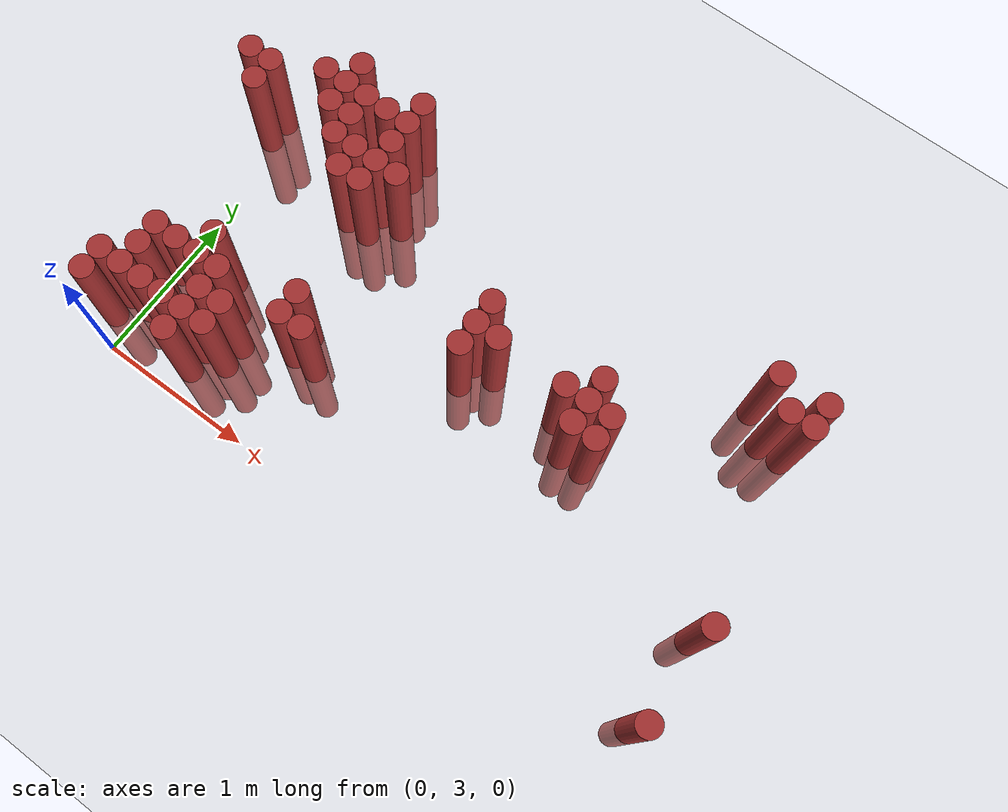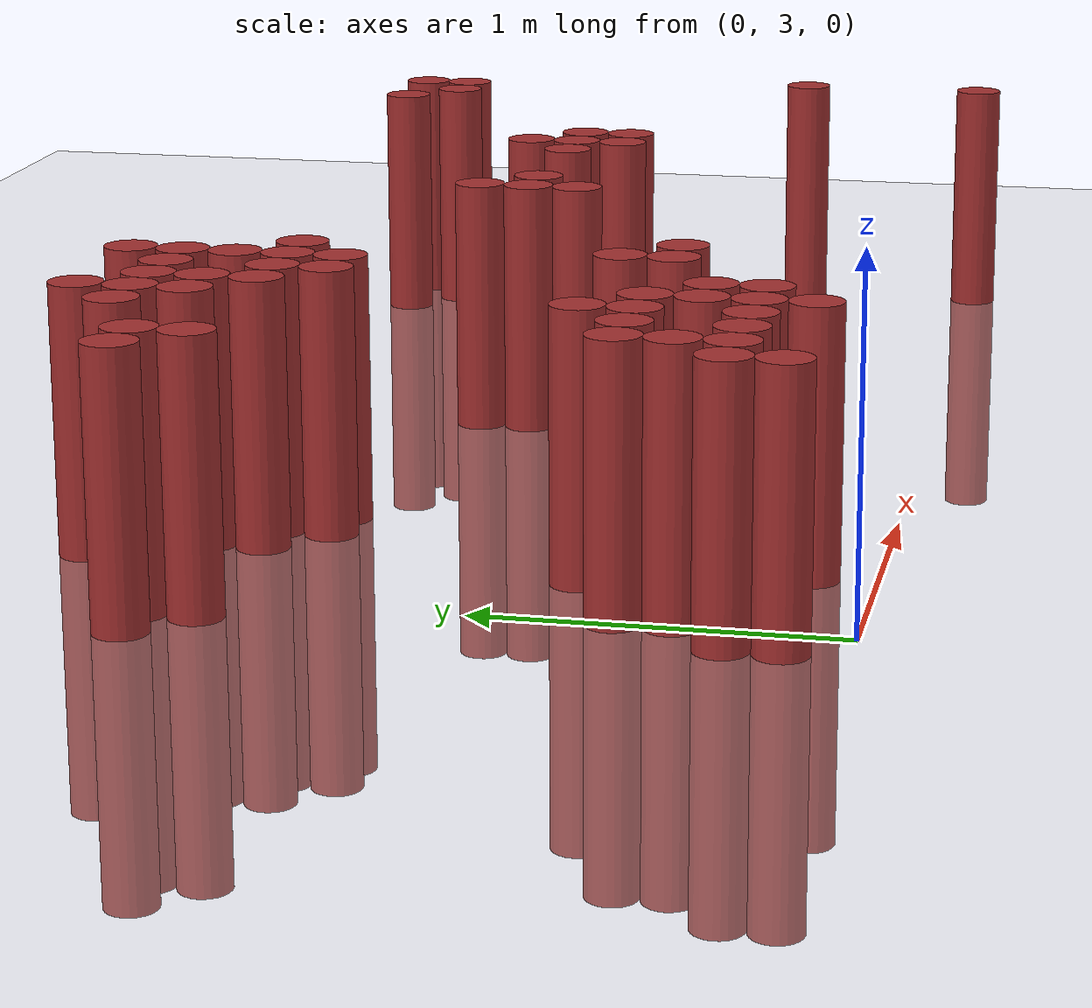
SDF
<sdf version="1.6">
 <world name="default">
  <model name="ground_plane">
   <static>1</static>
   <link name="link">
    <collision name="collision">
     <geometry><plane><normal>0 0 1</normal><size>100 100</size></plane></geometry>
     <surface><friction><ode><mu>100</mu><mu2>50</mu2></ode></friction></surface>
    </collision>
    <visual name="visual">
     <cast_shadows>0</cast_shadows>
     <geometry><plane><normal>0 0 1</normal><size>100 100</size></plane></geometry>
     <material>
      <script><uri>file://media/materials/scripts/gazebo.material</uri><name>Gazebo/Grey</name></script>
     </material>
    </visual>
   </link>
  </model>
  <model name="unit_cylinder_355">
   <static>1</static>
   <pose>-0.275000 4.825000 0.000000 0.000000 0.000000 0.000000</pose>
   <link name="link">
    <inertial>
     <mass>1</mass>
     <inertia><ixx>0.145833</ixx><ixy>0</ixy><ixz>0</ixz><iyy>0.145833</iyy><iyz>0</iyz><izz>0.125</izz></inertia>
    </inertial>
    <collision name="collision">
     <geometry><cylinder><radius>0.075000</radius><length>1.5</length></cylinder></geometry>
    </collision>
    <visual name="visual">
     <geometry><cylinder><radius>0.075000</radius><length>1.5</length></cylinder></geometry>
     <material>
      <ambient>0.648000 0.192000 0.192000 1</ambient>
      <diffuse>0.648000 0.192000 0.192000 1</diffuse>
     </material>
     <material>
      <script><name>Gazebo/Grey</name><uri>file://media/materials/scripts/gazebo.material</uri></script>
     </material>
    </visual>
   </link>
  </model>
  <model name="unit_cylinder_360">
   <static>1</static>
   <pose>-0.125000 3.175000 0.000000 0.000000 0.000000 0.000000</pose>
   <link name="link">
    <inertial>
     <mass>1</mass>
     <inertia><ixx>0.145833</ixx><ixy>0</ixy><ixz>0</ixz><iyy>0.145833</iyy><iyz>0</iyz><izz>0.125</izz></inertia>
    </inertial>
    <collision name="collision">
     <geometry><cylinder><radius>0.075000</radius><length>1.5</length></cylinder></geometry>
    </collision>
    <visual name="visual">
     <geometry><cylinder><radius>0.075000</radius><length>1.5</length></cylinder></geometry>
     <material>
      <ambient>0.648000 0.192000 0.192000 1</ambient>
      <diffuse>0.648000 0.192000 0.192000 1</diffuse>
     </material>
     <material>
      <script><name>Gazebo/Grey</name><uri>file://media/materials/scripts/gazebo.material</uri></script>
     </material>
    </visual>
   </link>
  </model>
  <model name="unit_cylinder_361">
   <static>1</static>
   <pose>-0.125000 3.325000 0.000000 0.000000 0.000000 0.000000</pose>
   <link name="link">
    <inertial>
     <mass>1</mass>
     <inertia><ixx>0.145833</ixx><ixy>0</ixy><ixz>0</ixz><iyy>0.145833</iyy><iyz>0</iyz><izz>0.125</izz></inertia>
    </inertial>
    <collision name="collision">
     <geometry><cylinder><radius>0.075000</radius><length>1.5</length></cylinder></geometry>
    </collision>
    <visual name="visual">
     <geometry><cylinder><radius>0.075000</radius><length>1.5</length></cylinder></geometry>
     <material>
      <ambient>0.648000 0.192000 0.192000 1</ambient>
      <diffuse>0.648000 0.192000 0.192000 1</diffuse>
     </material>
     <material>
      <script><name>Gazebo/Grey</name><uri>file://media/materials/scripts/gazebo.material</uri></script>
     </material>
    </visual>
   </link>
  </model>
  <model name="unit_cylinder_362">
   <static>1</static>
   <pose>-0.125000 4.675000 0.000000 0.000000 0.000000 0.000000</pose>
   <link name="link">
    <inertial>
     <mass>1</mass>
     <inertia><ixx>0.145833</ixx><ixy>0</ixy><ixz>0</ixz><iyy>0.145833</iyy><iyz>0</iyz><izz>0.125</izz></inertia>
    </inertial>
    <collision name="collision">
     <geometry><cylinder><radius>0.075000</radius><length>1.5</length></cylinder></geometry>
    </collision>
    <visual name="visual">
     <geometry><cylinder><radius>0.075000</radius><length>1.5</length></cylinder></geometry>
     <material>
      <ambient>0.648000 0.192000 0.192000 1</ambient>
      <diffuse>0.648000 0.192000 0.192000 1</diffuse>
     </material>
     <material>
      <script><name>Gazebo/Grey</name><uri>file://media/materials/scripts/gazebo.material</uri></script>
     </material>
    </visual>
   </link>
  </model>
  <model name="unit_cylinder_363">
   <static>1</static>
   <pose>-0.125000 4.825000 0.000000 0.000000 0.000000 0.000000</pose>
   <link name="link">
    <inertial>
     <mass>1</mass>
     <inertia><ixx>0.145833</ixx><ixy>0</ixy><ixz>0</ixz><iyy>0.145833</iyy><iyz>0</iyz><izz>0.125</izz></inertia>
    </inertial>
    <collision name="collision">
     <geometry><cylinder><radius>0.075000</radius><length>1.5</length></cylinder></geometry>
    </collision>
    <visual name="visual">
     <geometry><cylinder><radius>0.075000</radius><length>1.5</length></cylinder></geometry>
     <material>
      <ambient>0.648000 0.192000 0.192000 1</ambient>
      <diffuse>0.648000 0.192000 0.192000 1</diffuse>
     </material>
     <material>
      <script><name>Gazebo/Grey</name><uri>file://media/materials/scripts/gazebo.material</uri></script>
     </material>
    </visual>
   </link>
  </model>
  <model name="unit_cylinder_365">
   <static>1</static>
   <pose>0.025000 3.325000 0.000000 0.000000 0.000000 0.000000</pose>
   <link name="link">
    <inertial>
     <mass>1</mass>
     <inertia><ixx>0.145833</ixx><ixy>0</ixy><ixz>0</ixz><iyy>0.145833</iyy><iyz>0</iyz><izz>0.125</izz></inertia>
    </inertial>
    <collision name="collision">
     <geometry><cylinder><radius>0.075000</radius><length>1.5</length></cylinder></geometry>
    </collision>
    <visual name="visual">
     <geometry><cylinder><radius>0.075000</radius><length>1.5</length></cylinder></geometry>
     <material>
      <ambient>0.648000 0.192000 0.192000 1</ambient>
      <diffuse>0.648000 0.192000 0.192000 1</diffuse>
     </material>
     <material>
      <script><name>Gazebo/Grey</name><uri>file://media/materials/scripts/gazebo.material</uri></script>
     </material>
    </visual>
   </link>
  </model>
  <model name="unit_cylinder_366">
   <static>1</static>
   <pose>0.025000 3.475000 0.000000 0.000000 0.000000 0.000000</pose>
   <link name="link">
    <inertial>
     <mass>1</mass>
     <inertia><ixx>0.145833</ixx><ixy>0</ixy><ixz>0</ixz><iyy>0.145833</iyy><iyz>0</iyz><izz>0.125</izz></inertia>
    </inertial>
    <collision name="collision">
     <geometry><cylinder><radius>0.075000</radius><length>1.5</length></cylinder></geometry>
    </collision>
    <visual name="visual">
     <geometry><cylinder><radius>0.075000</radius><length>1.5</length></cylinder></geometry>
     <material>
      <ambient>0.648000 0.192000 0.192000 1</ambient>
      <diffuse>0.648000 0.192000 0.192000 1</diffuse>
     </material>
     <material>
      <script><name>Gazebo/Grey</name><uri>file://media/materials/scripts/gazebo.material</uri></script>
     </material>
    </visual>
   </link>
  </model>
  <model name="unit_cylinder_367">
   <static>1</static>
   <pose>0.025000 3.625000 0.000000 0.000000 0.000000 0.000000</pose>
   <link name="link">
    <inertial>
     <mass>1</mass>
     <inertia><ixx>0.145833</ixx><ixy>0</ixy><ixz>0</ixz><iyy>0.145833</iyy><iyz>0</iyz><izz>0.125</izz></inertia>
    </inertial>
    <collision name="collision">
     <geometry><cylinder><radius>0.075000</radius><length>1.5</length></cylinder></geometry>
    </collision>
    <visual name="visual">
     <geometry><cylinder><radius>0.075000</radius><length>1.5</length></cylinder></geometry>
     <material>
      <ambient>0.648000 0.192000 0.192000 1</ambient>
      <diffuse>0.648000 0.192000 0.192000 1</diffuse>
     </material>
     <material>
      <script><name>Gazebo/Grey</name><uri>file://media/materials/scripts/gazebo.material</uri></script>
     </material>
    </visual>
   </link>
  </model>
  <model name="unit_cylinder_368">
   <static>1</static>
   <pose>0.175000 3.325000 0.000000 0.000000 0.000000 0.000000</pose>
   <link name="link">
    <inertial>
     <mass>1</mass>
     <inertia><ixx>0.145833</ixx><ixy>0</ixy><ixz>0</ixz><iyy>0.145833</iyy><iyz>0</iyz><izz>0.125</izz></inertia>
    </inertial>
    <collision name="collision">
     <geometry><cylinder><radius>0.075000</radius><length>1.5</length></cylinder></geometry>
    </collision>
    <visual name="visual">
     <geometry><cylinder><radius>0.075000</radius><length>1.5</length></cylinder></geometry>
     <material>
      <ambient>0.648000 0.192000 0.192000 1</ambient>
      <diffuse>0.648000 0.192000 0.192000 1</diffuse>
     </material>
     <material>
      <script><name>Gazebo/Grey</name><uri>file://media/materials/scripts/gazebo.material</uri></script>
     </material>
    </visual>
   </link>
  </model>
  <model name="unit_cylinder_369">
   <static>1</static>
   <pose>0.175000 3.625000 0.000000 0.000000 0.000000 0.000000</pose>
   <link name="link">
    <inertial>
     <mass>1</mass>
     <inertia><ixx>0.145833</ixx><ixy>0</ixy><ixz>0</ixz><iyy>0.145833</iyy><iyz>0</iyz><izz>0.125</izz></inertia>
    </inertial>
    <collision name="collision">
     <geometry><cylinder><radius>0.075000</radius><length>1.5</length></cylinder></geometry>
    </collision>
    <visual name="visual">
     <geometry><cylinder><radius>0.075000</radius><length>1.5</length></cylinder></geometry>
     <material>
      <ambient>0.648000 0.192000 0.192000 1</ambient>
      <diffuse>0.648000 0.192000 0.192000 1</diffuse>
     </material>
     <material>
      <script><name>Gazebo/Grey</name><uri>file://media/materials/scripts/gazebo.material</uri></script>
     </material>
    </visual>
   </link>
  </model>
  <model name="unit_cylinder_370">
   <static>1</static>
   <pose>0.175000 4.975000 0.000000 0.000000 0.000000 0.000000</pose>
   <link name="link">
    <inertial>
     <mass>1</mass>
     <inertia><ixx>0.145833</ixx><ixy>0</ixy><ixz>0</ixz><iyy>0.145833</iyy><iyz>0</iyz><izz>0.125</izz></inertia>
    </inertial>
    <collision name="collision">
     <geometry><cylinder><radius>0.075000</radius><length>1.5</length></cylinder></geometry>
    </collision>
    <visual name="visual">
     <geometry><cylinder><radius>0.075000</radius><length>1.5</length></cylinder></geometry>
     <material>
      <ambient>0.648000 0.192000 0.192000 1</ambient>
      <diffuse>0.648000 0.192000 0.192000 1</diffuse>
     </material>
     <material>
      <script><name>Gazebo/Grey</name><uri>file://media/materials/scripts/gazebo.material</uri></script>
     </material>
    </visual>
   </link>
  </model>
  <model name="unit_cylinder_372">
   <static>1</static>
   <pose>0.325000 3.325000 0.000000 0.000000 0.000000 0.000000</pose>
   <link name="link">
    <inertial>
     <mass>1</mass>
     <inertia><ixx>0.145833</ixx><ixy>0</ixy><ixz>0</ixz><iyy>0.145833</iyy><iyz>0</iyz><izz>0.125</izz></inertia>
    </inertial>
    <collision name="collision">
     <geometry><cylinder><radius>0.075000</radius><length>1.5</length></cylinder></geometry>
    </collision>
    <visual name="visual">
     <geometry><cylinder><radius>0.075000</radius><length>1.5</length></cylinder></geometry>
     <material>
      <ambient>0.648000 0.192000 0.192000 1</ambient>
      <diffuse>0.648000 0.192000 0.192000 1</diffuse>
     </material>
     <material>
      <script><name>Gazebo/Grey</name><uri>file://media/materials/scripts/gazebo.material</uri></script>
     </material>
    </visual>
   </link>
  </model>
  <model name="unit_cylinder_373">
   <static>1</static>
   <pose>0.325000 3.625000 0.000000 0.000000 0.000000 0.000000</pose>
   <link name="link">
    <inertial>
     <mass>1</mass>
     <inertia><ixx>0.145833</ixx><ixy>0</ixy><ixz>0</ixz><iyy>0.145833</iyy><iyz>0</iyz><izz>0.125</izz></inertia>
    </inertial>
    <collision name="collision">
     <geometry><cylinder><radius>0.075000</radius><length>1.5</length></cylinder></geometry>
    </collision>
    <visual name="visual">
     <geometry><cylinder><radius>0.075000</radius><length>1.5</length></cylinder></geometry>
     <material>
      <ambient>0.648000 0.192000 0.192000 1</ambient>
      <diffuse>0.648000 0.192000 0.192000 1</diffuse>
     </material>
     <material>
      <script><name>Gazebo/Grey</name><uri>file://media/materials/scripts/gazebo.material</uri></script>
     </material>
    </visual>
   </link>
  </model>
  <model name="unit_cylinder_374">
   <static>1</static>
   <pose>0.325000 3.775000 0.000000 0.000000 0.000000 0.000000</pose>
   <link name="link">
    <inertial>
     <mass>1</mass>
     <inertia><ixx>0.145833</ixx><ixy>0</ixy><ixz>0</ixz><iyy>0.145833</iyy><iyz>0</iyz><izz>0.125</izz></inertia>
    </inertial>
    <collision name="collision">
     <geometry><cylinder><radius>0.075000</radius><length>1.5</length></cylinder></geometry>
    </collision>
    <visual name="visual">
     <geometry><cylinder><radius>0.075000</radius><length>1.5</length></cylinder></geometry>
     <material>
      <ambient>0.648000 0.192000 0.192000 1</ambient>
      <diffuse>0.648000 0.192000 0.192000 1</diffuse>
     </material>
     <material>
      <script><name>Gazebo/Grey</name><uri>file://media/materials/scripts/gazebo.material</uri></script>
     </material>
    </visual>
   </link>
  </model>
  <model name="unit_cylinder_375">
   <static>1</static>
   <pose>0.325000 4.825000 0.000000 0.000000 0.000000 0.000000</pose>
   <link name="link">
    <inertial>
     <mass>1</mass>
     <inertia><ixx>0.145833</ixx><ixy>0</ixy><ixz>0</ixz><iyy>0.145833</iyy><iyz>0</iyz><izz>0.125</izz></inertia>
    </inertial>
    <collision name="collision">
     <geometry><cylinder><radius>0.075000</radius><length>1.5</length></cylinder></geometry>
    </collision>
    <visual name="visual">
     <geometry><cylinder><radius>0.075000</radius><length>1.5</length></cylinder></geometry>
     <material>
      <ambient>0.648000 0.192000 0.192000 1</ambient>
      <diffuse>0.648000 0.192000 0.192000 1</diffuse>
     </material>
     <material>
      <script><name>Gazebo/Grey</name><uri>file://media/materials/scripts/gazebo.material</uri></script>
     </material>
    </visual>
   </link>
  </model>
  <model name="unit_cylinder_376">
   <static>1</static>
   <pose>0.325000 4.975000 0.000000 0.000000 0.000000 0.000000</pose>
   <link name="link">
    <inertial>
     <mass>1</mass>
     <inertia><ixx>0.145833</ixx><ixy>0</ixy><ixz>0</ixz><iyy>0.145833</iyy><iyz>0</iyz><izz>0.125</izz></inertia>
    </inertial>
    <collision name="collision">
     <geometry><cylinder><radius>0.075000</radius><length>1.5</length></cylinder></geometry>
    </collision>
    <visual name="visual">
     <geometry><cylinder><radius>0.075000</radius><length>1.5</length></cylinder></geometry>
     <material>
      <ambient>0.648000 0.192000 0.192000 1</ambient>
      <diffuse>0.648000 0.192000 0.192000 1</diffuse>
     </material>
     <material>
      <script><name>Gazebo/Grey</name><uri>file://media/materials/scripts/gazebo.material</uri></script>
     </material>
    </visual>
   </link>
  </model>
  <model name="unit_cylinder_377">
   <static>1</static>
   <pose>0.325000 5.125000 0.000000 0.000000 0.000000 0.000000</pose>
   <link name="link">
    <inertial>
     <mass>1</mass>
     <inertia><ixx>0.145833</ixx><ixy>0</ixy><ixz>0</ixz><iyy>0.145833</iyy><iyz>0</iyz><izz>0.125</izz></inertia>
    </inertial>
    <collision name="collision">
     <geometry><cylinder><radius>0.075000</radius><length>1.5</length></cylinder></geometry>
    </collision>
    <visual name="visual">
     <geometry><cylinder><radius>0.075000</radius><length>1.5</length></cylinder></geometry>
     <material>
      <ambient>0.648000 0.192000 0.192000 1</ambient>
      <diffuse>0.648000 0.192000 0.192000 1</diffuse>
     </material>
     <material>
      <script><name>Gazebo/Grey</name><uri>file://media/materials/scripts/gazebo.material</uri></script>
     </material>
    </visual>
   </link>
  </model>
  <model name="unit_cylinder_380">
   <static>1</static>
   <pose>0.475000 3.175000 0.000000 0.000000 0.000000 0.000000</pose>
   <link name="link">
    <inertial>
     <mass>1</mass>
     <inertia><ixx>0.145833</ixx><ixy>0</ixy><ixz>0</ixz><iyy>0.145833</iyy><iyz>0</iyz><izz>0.125</izz></inertia>
    </inertial>
    <collision name="collision">
     <geometry><cylinder><radius>0.075000</radius><length>1.5</length></cylinder></geometry>
    </collision>
    <visual name="visual">
     <geometry><cylinder><radius>0.075000</radius><length>1.5</length></cylinder></geometry>
     <material>
      <ambient>0.648000 0.192000 0.192000 1</ambient>
      <diffuse>0.648000 0.192000 0.192000 1</diffuse>
     </material>
     <material>
      <script><name>Gazebo/Grey</name><uri>file://media/materials/scripts/gazebo.material</uri></script>
     </material>
    </visual>
   </link>
  </model>
  <model name="unit_cylinder_381">
   <static>1</static>
   <pose>0.475000 3.325000 0.000000 0.000000 0.000000 0.000000</pose>
   <link name="link">
    <inertial>
     <mass>1</mass>
     <inertia><ixx>0.145833</ixx><ixy>0</ixy><ixz>0</ixz><iyy>0.145833</iyy><iyz>0</iyz><izz>0.125</izz></inertia>
    </inertial>
    <collision name="collision">
     <geometry><cylinder><radius>0.075000</radius><length>1.5</length></cylinder></geometry>
    </collision>
    <visual name="visual">
     <geometry><cylinder><radius>0.075000</radius><length>1.5</length></cylinder></geometry>
     <material>
      <ambient>0.648000 0.192000 0.192000 1</ambient>
      <diffuse>0.648000 0.192000 0.192000 1</diffuse>
     </material>
     <material>
      <script><name>Gazebo/Grey</name><uri>file://media/materials/scripts/gazebo.material</uri></script>
     </material>
    </visual>
   </link>
  </model>
  <model name="unit_cylinder_382">
   <static>1</static>
   <pose>0.475000 3.475000 0.000000 0.000000 0.000000 0.000000</pose>
   <link name="link">
    <inertial>
     <mass>1</mass>
     <inertia><ixx>0.145833</ixx><ixy>0</ixy><ixz>0</ixz><iyy>0.145833</iyy><iyz>0</iyz><izz>0.125</izz></inertia>
    </inertial>
    <collision name="collision">
     <geometry><cylinder><radius>0.075000</radius><length>1.5</length></cylinder></geometry>
    </collision>
    <visual name="visual">
     <geometry><cylinder><radius>0.075000</radius><length>1.5</length></cylinder></geometry>
     <material>
      <ambient>0.648000 0.192000 0.192000 1</ambient>
      <diffuse>0.648000 0.192000 0.192000 1</diffuse>
     </material>
     <material>
      <script><name>Gazebo/Grey</name><uri>file://media/materials/scripts/gazebo.material</uri></script>
     </material>
    </visual>
   </link>
  </model>
  <model name="unit_cylinder_383">
   <static>1</static>
   <pose>0.475000 3.625000 0.000000 0.000000 0.000000 0.000000</pose>
   <link name="link">
    <inertial>
     <mass>1</mass>
     <inertia><ixx>0.145833</ixx><ixy>0</ixy><ixz>0</ixz><iyy>0.145833</iyy><iyz>0</iyz><izz>0.125</izz></inertia>
    </inertial>
    <collision name="collision">
     <geometry><cylinder><radius>0.075000</radius><length>1.5</length></cylinder></geometry>
    </collision>
    <visual name="visual">
     <geometry><cylinder><radius>0.075000</radius><length>1.5</length></cylinder></geometry>
     <material>
      <ambient>0.648000 0.192000 0.192000 1</ambient>
      <diffuse>0.648000 0.192000 0.192000 1</diffuse>
     </material>
     <material>
      <script><name>Gazebo/Grey</name><uri>file://media/materials/scripts/gazebo.material</uri></script>
     </material>
    </visual>
   </link>
  </model>
  <model name="unit_cylinder_384">
   <static>1</static>
   <pose>0.475000 4.675000 0.000000 0.000000 0.000000 0.000000</pose>
   <link name="link">
    <inertial>
     <mass>1</mass>
     <inertia><ixx>0.145833</ixx><ixy>0</ixy><ixz>0</ixz><iyy>0.145833</iyy><iyz>0</iyz><izz>0.125</izz></inertia>
    </inertial>
    <collision name="collision">
     <geometry><cylinder><radius>0.075000</radius><length>1.5</length></cylinder></geometry>
    </collision>
    <visual name="visual">
     <geometry><cylinder><radius>0.075000</radius><length>1.5</length></cylinder></geometry>
     <material>
      <ambient>0.648000 0.192000 0.192000 1</ambient>
      <diffuse>0.648000 0.192000 0.192000 1</diffuse>
     </material>
     <material>
      <script><name>Gazebo/Grey</name><uri>file://media/materials/scripts/gazebo.material</uri></script>
     </material>
    </visual>
   </link>
  </model>
  <model name="unit_cylinder_385">
   <static>1</static>
   <pose>0.475000 4.825000 0.000000 0.000000 0.000000 0.000000</pose>
   <link name="link">
    <inertial>
     <mass>1</mass>
     <inertia><ixx>0.145833</ixx><ixy>0</ixy><ixz>0</ixz><iyy>0.145833</iyy><iyz>0</iyz><izz>0.125</izz></inertia>
    </inertial>
    <collision name="collision">
     <geometry><cylinder><radius>0.075000</radius><length>1.5</length></cylinder></geometry>
    </collision>
    <visual name="visual">
     <geometry><cylinder><radius>0.075000</radius><length>1.5</length></cylinder></geometry>
     <material>
      <ambient>0.648000 0.192000 0.192000 1</ambient>
      <diffuse>0.648000 0.192000 0.192000 1</diffuse>
     </material>
     <material>
      <script><name>Gazebo/Grey</name><uri>file://media/materials/scripts/gazebo.material</uri></script>
     </material>
    </visual>
   </link>
  </model>
  <model name="unit_cylinder_386">
   <static>1</static>
   <pose>0.475000 4.975000 0.000000 0.000000 0.000000 0.000000</pose>
   <link name="link">
    <inertial>
     <mass>1</mass>
     <inertia><ixx>0.145833</ixx><ixy>0</ixy><ixz>0</ixz><iyy>0.145833</iyy><iyz>0</iyz><izz>0.125</izz></inertia>
    </inertial>
    <collision name="collision">
     <geometry><cylinder><radius>0.075000</radius><length>1.5</length></cylinder></geometry>
    </collision>
    <visual name="visual">
     <geometry><cylinder><radius>0.075000</radius><length>1.5</length></cylinder></geometry>
     <material>
      <ambient>0.648000 0.192000 0.192000 1</ambient>
      <diffuse>0.648000 0.192000 0.192000 1</diffuse>
     </material>
     <material>
      <script><name>Gazebo/Grey</name><uri>file://media/materials/scripts/gazebo.material</uri></script>
     </material>
    </visual>
   </link>
  </model>
  <model name="unit_cylinder_388">
   <static>1</static>
   <pose>0.625000 3.325000 0.000000 0.000000 0.000000 0.000000</pose>
   <link name="link">
    <inertial>
     <mass>1</mass>
     <inertia><ixx>0.145833</ixx><ixy>0</ixy><ixz>0</ixz><iyy>0.145833</iyy><iyz>0</iyz><izz>0.125</izz></inertia>
    </inertial>
    <collision name="collision">
     <geometry><cylinder><radius>0.075000</radius><length>1.5</length></cylinder></geometry>
    </collision>
    <visual name="visual">
     <geometry><cylinder><radius>0.075000</radius><length>1.5</length></cylinder></geometry>
     <material>
      <ambient>0.648000 0.192000 0.192000 1</ambient>
      <diffuse>0.648000 0.192000 0.192000 1</diffuse>
     </material>
     <material>
      <script><name>Gazebo/Grey</name><uri>file://media/materials/scripts/gazebo.material</uri></script>
     </material>
    </visual>
   </link>
  </model>
  <model name="unit_cylinder_389">
   <static>1</static>
   <pose>0.625000 3.475000 0.000000 0.000000 0.000000 0.000000</pose>
   <link name="link">
    <inertial>
     <mass>1</mass>
     <inertia><ixx>0.145833</ixx><ixy>0</ixy><ixz>0</ixz><iyy>0.145833</iyy><iyz>0</iyz><izz>0.125</izz></inertia>
    </inertial>
    <collision name="collision">
     <geometry><cylinder><radius>0.075000</radius><length>1.5</length></cylinder></geometry>
    </collision>
    <visual name="visual">
     <geometry><cylinder><radius>0.075000</radius><length>1.5</length></cylinder></geometry>
     <material>
      <ambient>0.648000 0.192000 0.192000 1</ambient>
      <diffuse>0.648000 0.192000 0.192000 1</diffuse>
     </material>
     <material>
      <script><name>Gazebo/Grey</name><uri>file://media/materials/scripts/gazebo.material</uri></script>
     </material>
    </visual>
   </link>
  </model>
  <model name="unit_cylinder_390">
   <static>1</static>
   <pose>0.625000 4.525000 0.000000 0.000000 0.000000 0.000000</pose>
   <link name="link">
    <inertial>
     <mass>1</mass>
     <inertia><ixx>0.145833</ixx><ixy>0</ixy><ixz>0</ixz><iyy>0.145833</iyy><iyz>0</iyz><izz>0.125</izz></inertia>
    </inertial>
    <collision name="collision">
     <geometry><cylinder><radius>0.075000</radius><length>1.5</length></cylinder></geometry>
    </collision>
    <visual name="visual">
     <geometry><cylinder><radius>0.075000</radius><length>1.5</length></cylinder></geometry>
     <material>
      <ambient>0.648000 0.192000 0.192000 1</ambient>
      <diffuse>0.648000 0.192000 0.192000 1</diffuse>
     </material>
     <material>
      <script><name>Gazebo/Grey</name><uri>file://media/materials/scripts/gazebo.material</uri></script>
     </material>
    </visual>
   </link>
  </model>
  <model name="unit_cylinder_391">
   <static>1</static>
   <pose>0.625000 4.675000 0.000000 0.000000 0.000000 0.000000</pose>
   <link name="link">
    <inertial>
     <mass>1</mass>
     <inertia><ixx>0.145833</ixx><ixy>0</ixy><ixz>0</ixz><iyy>0.145833</iyy><iyz>0</iyz><izz>0.125</izz></inertia>
    </inertial>
    <collision name="collision">
     <geometry><cylinder><radius>0.075000</radius><length>1.5</length></cylinder></geometry>
    </collision>
    <visual name="visual">
     <geometry><cylinder><radius>0.075000</radius><length>1.5</length></cylinder></geometry>
     <material>
      <ambient>0.648000 0.192000 0.192000 1</ambient>
      <diffuse>0.648000 0.192000 0.192000 1</diffuse>
     </material>
     <material>
      <script><name>Gazebo/Grey</name><uri>file://media/materials/scripts/gazebo.material</uri></script>
     </material>
    </visual>
   </link>
  </model>
  <model name="unit_cylinder_392">
   <static>1</static>
   <pose>0.625000 4.975000 0.000000 0.000000 0.000000 0.000000</pose>
   <link name="link">
    <inertial>
     <mass>1</mass>
     <inertia><ixx>0.145833</ixx><ixy>0</ixy><ixz>0</ixz><iyy>0.145833</iyy><iyz>0</iyz><izz>0.125</izz></inertia>
    </inertial>
    <collision name="collision">
     <geometry><cylinder><radius>0.075000</radius><length>1.5</length></cylinder></geometry>
    </collision>
    <visual name="visual">
     <geometry><cylinder><radius>0.075000</radius><length>1.5</length></cylinder></geometry>
     <material>
      <ambient>0.648000 0.192000 0.192000 1</ambient>
      <diffuse>0.648000 0.192000 0.192000 1</diffuse>
     </material>
     <material>
      <script><name>Gazebo/Grey</name><uri>file://media/materials/scripts/gazebo.material</uri></script>
     </material>
    </visual>
   </link>
  </model>
  <model name="unit_cylinder_393">
   <static>1</static>
   <pose>0.775000 4.525000 0.000000 0.000000 0.000000 0.000000</pose>
   <link name="link">
    <inertial>
     <mass>1</mass>
     <inertia><ixx>0.145833</ixx><ixy>0</ixy><ixz>0</ixz><iyy>0.145833</iyy><iyz>0</iyz><izz>0.125</izz></inertia>
    </inertial>
    <collision name="collision">
     <geometry><cylinder><radius>0.075000</radius><length>1.5</length></cylinder></geometry>
    </collision>
    <visual name="visual">
     <geometry><cylinder><radius>0.075000</radius><length>1.5</length></cylinder></geometry>
     <material>
      <ambient>0.648000 0.192000 0.192000 1</ambient>
      <diffuse>0.648000 0.192000 0.192000 1</diffuse>
     </material>
     <material>
      <script><name>Gazebo/Grey</name><uri>file://media/materials/scripts/gazebo.material</uri></script>
     </material>
    </visual>
   </link>
  </model>
  <model name="unit_cylinder_394">
   <static>1</static>
   <pose>0.775000 4.675000 0.000000 0.000000 0.000000 0.000000</pose>
   <link name="link">
    <inertial>
     <mass>1</mass>
     <inertia><ixx>0.145833</ixx><ixy>0</ixy><ixz>0</ixz><iyy>0.145833</iyy><iyz>0</iyz><izz>0.125</izz></inertia>
    </inertial>
    <collision name="collision">
     <geometry><cylinder><radius>0.075000</radius><length>1.5</length></cylinder></geometry>
    </collision>
    <visual name="visual">
     <geometry><cylinder><radius>0.075000</radius><length>1.5</length></cylinder></geometry>
     <material>
      <ambient>0.648000 0.192000 0.192000 1</ambient>
      <diffuse>0.648000 0.192000 0.192000 1</diffuse>
     </material>
     <material>
      <script><name>Gazebo/Grey</name><uri>file://media/materials/scripts/gazebo.material</uri></script>
     </material>
    </visual>
   </link>
  </model>
  <model name="unit_cylinder_395">
   <static>1</static>
   <pose>0.775000 4.825000 0.000000 0.000000 0.000000 0.000000</pose>
   <link name="link">
    <inertial>
     <mass>1</mass>
     <inertia><ixx>0.145833</ixx><ixy>0</ixy><ixz>0</ixz><iyy>0.145833</iyy><iyz>0</iyz><izz>0.125</izz></inertia>
    </inertial>
    <collision name="collision">
     <geometry><cylinder><radius>0.075000</radius><length>1.5</length></cylinder></geometry>
    </collision>
    <visual name="visual">
     <geometry><cylinder><radius>0.075000</radius><length>1.5</length></cylinder></geometry>
     <material>
      <ambient>0.648000 0.192000 0.192000 1</ambient>
      <diffuse>0.648000 0.192000 0.192000 1</diffuse>
     </material>
     <material>
      <script><name>Gazebo/Grey</name><uri>file://media/materials/scripts/gazebo.material</uri></script>
     </material>
    </visual>
   </link>
  </model>
  <model name="unit_cylinder_396">
   <static>1</static>
   <pose>0.775000 4.975000 0.000000 0.000000 0.000000 0.000000</pose>
   <link name="link">
    <inertial>
     <mass>1</mass>
     <inertia><ixx>0.145833</ixx><ixy>0</ixy><ixz>0</ixz><iyy>0.145833</iyy><iyz>0</iyz><izz>0.125</izz></inertia>
    </inertial>
    <collision name="collision">
     <geometry><cylinder><radius>0.075000</radius><length>1.5</length></cylinder></geometry>
    </collision>
    <visual name="visual">
     <geometry><cylinder><radius>0.075000</radius><length>1.5</length></cylinder></geometry>
     <material>
      <ambient>0.648000 0.192000 0.192000 1</ambient>
      <diffuse>0.648000 0.192000 0.192000 1</diffuse>
     </material>
     <material>
      <script><name>Gazebo/Grey</name><uri>file://media/materials/scripts/gazebo.material</uri></script>
     </material>
    </visual>
   </link>
  </model>
  <model name="unit_cylinder_397">
   <static>1</static>
   <pose>0.775000 5.125000 0.000000 0.000000 0.000000 0.000000</pose>
   <link name="link">
    <inertial>
     <mass>1</mass>
     <inertia><ixx>0.145833</ixx><ixy>0</ixy><ixz>0</ixz><iyy>0.145833</iyy><iyz>0</iyz><izz>0.125</izz></inertia>
    </inertial>
    <collision name="collision">
     <geometry><cylinder><radius>0.075000</radius><length>1.5</length></cylinder></geometry>
    </collision>
    <visual name="visual">
     <geometry><cylinder><radius>0.075000</radius><length>1.5</length></cylinder></geometry>
     <material>
      <ambient>0.648000 0.192000 0.192000 1</ambient>
      <diffuse>0.648000 0.192000 0.192000 1</diffuse>
     </material>
     <material>
      <script><name>Gazebo/Grey</name><uri>file://media/materials/scripts/gazebo.material</uri></script>
     </material>
    </visual>
   </link>
  </model>
  <model name="unit_cylinder_400">
   <static>1</static>
   <pose>0.925000 3.625000 0.000000 0.000000 0.000000 0.000000</pose>
   <link name="link">
    <inertial>
     <mass>1</mass>
     <inertia><ixx>0.145833</ixx><ixy>0</ixy><ixz>0</ixz><iyy>0.145833</iyy><iyz>0</iyz><izz>0.125</izz></inertia>
    </inertial>
    <collision name="collision">
     <geometry><cylinder><radius>0.075000</radius><length>1.5</length></cylinder></geometry>
    </collision>
    <visual name="visual">
     <geometry><cylinder><radius>0.075000</radius><length>1.5</length></cylinder></geometry>
     <material>
      <ambient>0.648000 0.192000 0.192000 1</ambient>
      <diffuse>0.648000 0.192000 0.192000 1</diffuse>
     </material>
     <material>
      <script><name>Gazebo/Grey</name><uri>file://media/materials/scripts/gazebo.material</uri></script>
     </material>
    </visual>
   </link>
  </model>
  <model name="unit_cylinder_401">
   <static>1</static>
   <pose>0.925000 3.775000 0.000000 0.000000 0.000000 0.000000</pose>
   <link name="link">
    <inertial>
     <mass>1</mass>
     <inertia><ixx>0.145833</ixx><ixy>0</ixy><ixz>0</ixz><iyy>0.145833</iyy><iyz>0</iyz><izz>0.125</izz></inertia>
    </inertial>
    <collision name="collision">
     <geometry><cylinder><radius>0.075000</radius><length>1.5</length></cylinder></geometry>
    </collision>
    <visual name="visual">
     <geometry><cylinder><radius>0.075000</radius><length>1.5</length></cylinder></geometry>
     <material>
      <ambient>0.648000 0.192000 0.192000 1</ambient>
      <diffuse>0.648000 0.192000 0.192000 1</diffuse>
     </material>
     <material>
      <script><name>Gazebo/Grey</name><uri>file://media/materials/scripts/gazebo.material</uri></script>
     </material>
    </visual>
   </link>
  </model>
  <model name="unit_cylinder_402">
   <static>1</static>
   <pose>0.925000 4.675000 0.000000 0.000000 0.000000 0.000000</pose>
   <link name="link">
    <inertial>
     <mass>1</mass>
     <inertia><ixx>0.145833</ixx><ixy>0</ixy><ixz>0</ixz><iyy>0.145833</iyy><iyz>0</iyz><izz>0.125</izz></inertia>
    </inertial>
    <collision name="collision">
     <geometry><cylinder><radius>0.075000</radius><length>1.5</length></cylinder></geometry>
    </collision>
    <visual name="visual">
     <geometry><cylinder><radius>0.075000</radius><length>1.5</length></cylinder></geometry>
     <material>
      <ambient>0.648000 0.192000 0.192000 1</ambient>
      <diffuse>0.648000 0.192000 0.192000 1</diffuse>
     </material>
     <material>
      <script><name>Gazebo/Grey</name><uri>file://media/materials/scripts/gazebo.material</uri></script>
     </material>
    </visual>
   </link>
  </model>
  <model name="unit_cylinder_408">
   <static>1</static>
   <pose>1.075000 3.625000 0.000000 0.000000 0.000000 0.000000</pose>
   <link name="link">
    <inertial>
     <mass>1</mass>
     <inertia><ixx>0.145833</ixx><ixy>0</ixy><ixz>0</ixz><iyy>0.145833</iyy><iyz>0</iyz><izz>0.125</izz></inertia>
    </inertial>
    <collision name="collision">
     <geometry><cylinder><radius>0.075000</radius><length>1.5</length></cylinder></geometry>
    </collision>
    <visual name="visual">
     <geometry><cylinder><radius>0.075000</radius><length>1.5</length></cylinder></geometry>
     <material>
      <ambient>0.648000 0.192000 0.192000 1</ambient>
      <diffuse>0.648000 0.192000 0.192000 1</diffuse>
     </material>
     <material>
      <script><name>Gazebo/Grey</name><uri>file://media/materials/scripts/gazebo.material</uri></script>
     </material>
    </visual>
   </link>
  </model>
  <model name="unit_cylinder_426">
   <static>1</static>
   <pose>1.825000 4.075000 0.000000 0.000000 0.000000 0.000000</pose>
   <link name="link">
    <inertial>
     <mass>1</mass>
     <inertia><ixx>0.145833</ixx><ixy>0</ixy><ixz>0</ixz><iyy>0.145833</iyy><iyz>0</iyz><izz>0.125</izz></inertia>
    </inertial>
    <collision name="collision">
     <geometry><cylinder><radius>0.075000</radius><length>1.5</length></cylinder></geometry>
    </collision>
    <visual name="visual">
     <geometry><cylinder><radius>0.075000</radius><length>1.5</length></cylinder></geometry>
     <material>
      <ambient>0.648000 0.192000 0.192000 1</ambient>
      <diffuse>0.648000 0.192000 0.192000 1</diffuse>
     </material>
     <material>
      <script><name>Gazebo/Grey</name><uri>file://media/materials/scripts/gazebo.material</uri></script>
     </material>
    </visual>
   </link>
  </model>
  <model name="unit_cylinder_427">
   <static>1</static>
   <pose>1.825000 4.225000 0.000000 0.000000 0.000000 0.000000</pose>
   <link name="link">
    <inertial>
     <mass>1</mass>
     <inertia><ixx>0.145833</ixx><ixy>0</ixy><ixz>0</ixz><iyy>0.145833</iyy><iyz>0</iyz><izz>0.125</izz></inertia>
    </inertial>
    <collision name="collision">
     <geometry><cylinder><radius>0.075000</radius><length>1.5</length></cylinder></geometry>
    </collision>
    <visual name="visual">
     <geometry><cylinder><radius>0.075000</radius><length>1.5</length></cylinder></geometry>
     <material>
      <ambient>0.648000 0.192000 0.192000 1</ambient>
      <diffuse>0.648000 0.192000 0.192000 1</diffuse>
     </material>
     <material>
      <script><name>Gazebo/Grey</name><uri>file://media/materials/scripts/gazebo.material</uri></script>
     </material>
    </visual>
   </link>
  </model>
  <model name="unit_cylinder_428">
   <static>1</static>
   <pose>1.825000 4.375000 0.000000 0.000000 0.000000 0.000000</pose>
   <link name="link">
    <inertial>
     <mass>1</mass>
     <inertia><ixx>0.145833</ixx><ixy>0</ixy><ixz>0</ixz><iyy>0.145833</iyy><iyz>0</iyz><izz>0.125</izz></inertia>
    </inertial>
    <collision name="collision">
     <geometry><cylinder><radius>0.075000</radius><length>1.5</length></cylinder></geometry>
    </collision>
    <visual name="visual">
     <geometry><cylinder><radius>0.075000</radius><length>1.5</length></cylinder></geometry>
     <material>
      <ambient>0.648000 0.192000 0.192000 1</ambient>
      <diffuse>0.648000 0.192000 0.192000 1</diffuse>
     </material>
     <material>
      <script><name>Gazebo/Grey</name><uri>file://media/materials/scripts/gazebo.material</uri></script>
     </material>
    </visual>
   </link>
  </model>
  <model name="unit_cylinder_429">
   <static>1</static>
   <pose>1.975000 4.225000 0.000000 0.000000 0.000000 0.000000</pose>
   <link name="link">
    <inertial>
     <mass>1</mass>
     <inertia><ixx>0.145833</ixx><ixy>0</ixy><ixz>0</ixz><iyy>0.145833</iyy><iyz>0</iyz><izz>0.125</izz></inertia>
    </inertial>
    <collision name="collision">
     <geometry><cylinder><radius>0.075000</radius><length>1.5</length></cylinder></geometry>
    </collision>
    <visual name="visual">
     <geometry><cylinder><radius>0.075000</radius><length>1.5</length></cylinder></geometry>
     <material>
      <ambient>0.648000 0.192000 0.192000 1</ambient>
      <diffuse>0.648000 0.192000 0.192000 1</diffuse>
     </material>
     <material>
      <script><name>Gazebo/Grey</name><uri>file://media/materials/scripts/gazebo.material</uri></script>
     </material>
    </visual>
   </link>
  </model>
  <model name="unit_cylinder_438">
   <static>1</static>
   <pose>2.425000 4.225000 0.000000 0.000000 0.000000 0.000000</pose>
   <link name="link">
    <inertial>
     <mass>1</mass>
     <inertia><ixx>0.145833</ixx><ixy>0</ixy><ixz>0</ixz><iyy>0.145833</iyy><iyz>0</iyz><izz>0.125</izz></inertia>
    </inertial>
    <collision name="collision">
     <geometry><cylinder><radius>0.075000</radius><length>1.5</length></cylinder></geometry>
    </collision>
    <visual name="visual">
     <geometry><cylinder><radius>0.075000</radius><length>1.5</length></cylinder></geometry>
     <material>
      <ambient>0.648000 0.192000 0.192000 1</ambient>
      <diffuse>0.648000 0.192000 0.192000 1</diffuse>
     </material>
     <material>
      <script><name>Gazebo/Grey</name><uri>file://media/materials/scripts/gazebo.material</uri></script>
     </material>
    </visual>
   </link>
  </model>
  <model name="unit_cylinder_439">
   <static>1</static>
   <pose>2.575000 4.075000 0.000000 0.000000 0.000000 0.000000</pose>
   <link name="link">
    <inertial>
     <mass>1</mass>
     <inertia><ixx>0.145833</ixx><ixy>0</ixy><ixz>0</ixz><iyy>0.145833</iyy><iyz>0</iyz><izz>0.125</izz></inertia>
    </inertial>
    <collision name="collision">
     <geometry><cylinder><radius>0.075000</radius><length>1.5</length></cylinder></geometry>
    </collision>
    <visual name="visual">
     <geometry><cylinder><radius>0.075000</radius><length>1.5</length></cylinder></geometry>
     <material>
      <ambient>0.648000 0.192000 0.192000 1</ambient>
      <diffuse>0.648000 0.192000 0.192000 1</diffuse>
     </material>
     <material>
      <script><name>Gazebo/Grey</name><uri>file://media/materials/scripts/gazebo.material</uri></script>
     </material>
    </visual>
   </link>
  </model>
  <model name="unit_cylinder_440">
   <static>1</static>
   <pose>2.575000 4.225000 0.000000 0.000000 0.000000 0.000000</pose>
   <link name="link">
    <inertial>
     <mass>1</mass>
     <inertia><ixx>0.145833</ixx><ixy>0</ixy><ixz>0</ixz><iyy>0.145833</iyy><iyz>0</iyz><izz>0.125</izz></inertia>
    </inertial>
    <collision name="collision">
     <geometry><cylinder><radius>0.075000</radius><length>1.5</length></cylinder></geometry>
    </collision>
    <visual name="visual">
     <geometry><cylinder><radius>0.075000</radius><length>1.5</length></cylinder></geometry>
     <material>
      <ambient>0.648000 0.192000 0.192000 1</ambient>
      <diffuse>0.648000 0.192000 0.192000 1</diffuse>
     </material>
     <material>
      <script><name>Gazebo/Grey</name><uri>file://media/materials/scripts/gazebo.material</uri></script>
     </material>
    </visual>
   </link>
  </model>
  <model name="unit_cylinder_441">
   <static>1</static>
   <pose>2.575000 4.375000 0.000000 0.000000 0.000000 0.000000</pose>
   <link name="link">
    <inertial>
     <mass>1</mass>
     <inertia><ixx>0.145833</ixx><ixy>0</ixy><ixz>0</ixz><iyy>0.145833</iyy><iyz>0</iyz><izz>0.125</izz></inertia>
    </inertial>
    <collision name="collision">
     <geometry><cylinder><radius>0.075000</radius><length>1.5</length></cylinder></geometry>
    </collision>
    <visual name="visual">
     <geometry><cylinder><radius>0.075000</radius><length>1.5</length></cylinder></geometry>
     <material>
      <ambient>0.648000 0.192000 0.192000 1</ambient>
      <diffuse>0.648000 0.192000 0.192000 1</diffuse>
     </material>
     <material>
      <script><name>Gazebo/Grey</name><uri>file://media/materials/scripts/gazebo.material</uri></script>
     </material>
    </visual>
   </link>
  </model>
  <model name="unit_cylinder_442">
   <static>1</static>
   <pose>2.725000 4.075000 0.000000 0.000000 0.000000 0.000000</pose>
   <link name="link">
    <inertial>
     <mass>1</mass>
     <inertia><ixx>0.145833</ixx><ixy>0</ixy><ixz>0</ixz><iyy>0.145833</iyy><iyz>0</iyz><izz>0.125</izz></inertia>
    </inertial>
    <collision name="collision">
     <geometry><cylinder><radius>0.075000</radius><length>1.5</length></cylinder></geometry>
    </collision>
    <visual name="visual">
     <geometry><cylinder><radius>0.075000</radius><length>1.5</length></cylinder></geometry>
     <material>
      <ambient>0.648000 0.192000 0.192000 1</ambient>
      <diffuse>0.648000 0.192000 0.192000 1</diffuse>
     </material>
     <material>
      <script><name>Gazebo/Grey</name><uri>file://media/materials/scripts/gazebo.material</uri></script>
     </material>
    </visual>
   </link>
  </model>
  <model name="unit_cylinder_443">
   <static>1</static>
   <pose>2.725000 4.225000 0.000000 0.000000 0.000000 0.000000</pose>
   <link name="link">
    <inertial>
     <mass>1</mass>
     <inertia><ixx>0.145833</ixx><ixy>0</ixy><ixz>0</ixz><iyy>0.145833</iyy><iyz>0</iyz><izz>0.125</izz></inertia>
    </inertial>
    <collision name="collision">
     <geometry><cylinder><radius>0.075000</radius><length>1.5</length></cylinder></geometry>
    </collision>
    <visual name="visual">
     <geometry><cylinder><radius>0.075000</radius><length>1.5</length></cylinder></geometry>
     <material>
      <ambient>0.648000 0.192000 0.192000 1</ambient>
      <diffuse>0.648000 0.192000 0.192000 1</diffuse>
     </material>
     <material>
      <script><name>Gazebo/Grey</name><uri>file://media/materials/scripts/gazebo.material</uri></script>
     </material>
    </visual>
   </link>
  </model>
  <model name="unit_cylinder_452">
   <static>1</static>
   <pose>3.325000 4.975000 0.000000 0.000000 0.000000 0.000000</pose>
   <link name="link">
    <inertial>
     <mass>1</mass>
     <inertia><ixx>0.145833</ixx><ixy>0</ixy><ixz>0</ixz><iyy>0.145833</iyy><iyz>0</iyz><izz>0.125</izz></inertia>
    </inertial>
    <collision name="collision">
     <geometry><cylinder><radius>0.075000</radius><length>1.5</length></cylinder></geometry>
    </collision>
    <visual name="visual">
     <geometry><cylinder><radius>0.075000</radius><length>1.5</length></cylinder></geometry>
     <material>
      <ambient>0.648000 0.192000 0.192000 1</ambient>
      <diffuse>0.648000 0.192000 0.192000 1</diffuse>
     </material>
     <material>
      <script><name>Gazebo/Grey</name><uri>file://media/materials/scripts/gazebo.material</uri></script>
     </material>
    </visual>
   </link>
  </model>
  <model name="unit_cylinder_455">
   <static>1</static>
   <pose>3.475000 4.825000 0.000000 0.000000 0.000000 0.000000</pose>
   <link name="link">
    <inertial>
     <mass>1</mass>
     <inertia><ixx>0.145833</ixx><ixy>0</ixy><ixz>0</ixz><iyy>0.145833</iyy><iyz>0</iyz><izz>0.125</izz></inertia>
    </inertial>
    <collision name="collision">
     <geometry><cylinder><radius>0.075000</radius><length>1.5</length></cylinder></geometry>
    </collision>
    <visual name="visual">
     <geometry><cylinder><radius>0.075000</radius><length>1.5</length></cylinder></geometry>
     <material>
      <ambient>0.648000 0.192000 0.192000 1</ambient>
      <diffuse>0.648000 0.192000 0.192000 1</diffuse>
     </material>
     <material>
      <script><name>Gazebo/Grey</name><uri>file://media/materials/scripts/gazebo.material</uri></script>
     </material>
    </visual>
   </link>
  </model>
  <model name="unit_cylinder_462">
   <static>1</static>
   <pose>3.625000 4.825000 0.000000 0.000000 0.000000 0.000000</pose>
   <link name="link">
    <inertial>
     <mass>1</mass>
     <inertia><ixx>0.145833</ixx><ixy>0</ixy><ixz>0</ixz><iyy>0.145833</iyy><iyz>0</iyz><izz>0.125</izz></inertia>
    </inertial>
    <collision name="collision">
     <geometry><cylinder><radius>0.075000</radius><length>1.5</length></cylinder></geometry>
    </collision>
    <visual name="visual">
     <geometry><cylinder><radius>0.075000</radius><length>1.5</length></cylinder></geometry>
     <material>
      <ambient>0.648000 0.192000 0.192000 1</ambient>
      <diffuse>0.648000 0.192000 0.192000 1</diffuse>
     </material>
     <material>
      <script><name>Gazebo/Grey</name><uri>file://media/materials/scripts/gazebo.material</uri></script>
     </material>
    </visual>
   </link>
  </model>
  <model name="unit_cylinder_463">
   <static>1</static>
   <pose>3.625000 4.975000 0.000000 0.000000 0.000000 0.000000</pose>
   <link name="link">
    <inertial>
     <mass>1</mass>
     <inertia><ixx>0.145833</ixx><ixy>0</ixy><ixz>0</ixz><iyy>0.145833</iyy><iyz>0</iyz><izz>0.125</izz></inertia>
    </inertial>
    <collision name="collision">
     <geometry><cylinder><radius>0.075000</radius><length>1.5</length></cylinder></geometry>
    </collision>
    <visual name="visual">
     <geometry><cylinder><radius>0.075000</radius><length>1.5</length></cylinder></geometry>
     <material>
      <ambient>0.648000 0.192000 0.192000 1</ambient>
      <diffuse>0.648000 0.192000 0.192000 1</diffuse>
     </material>
     <material>
      <script><name>Gazebo/Grey</name><uri>file://media/materials/scripts/gazebo.material</uri></script>
     </material>
    </visual>
   </link>
  </model>
  <model name="unit_cylinder_481">
   <static>1</static>
   <pose>3.775000 3.025000 0.000000 0.000000 0.000000 0.000000</pose>
   <link name="link">
    <inertial>
     <mass>1</mass>
     <inertia><ixx>0.145833</ixx><ixy>0</ixy><ixz>0</ixz><iyy>0.145833</iyy><iyz>0</iyz><izz>0.125</izz></inertia>
    </inertial>
    <collision name="collision">
     <geometry><cylinder><radius>0.075000</radius><length>1.5</length></cylinder></geometry>
    </collision>
    <visual name="visual">
     <geometry><cylinder><radius>0.075000</radius><length>1.5</length></cylinder></geometry>
     <material>
      <ambient>0.648000 0.192000 0.192000 1</ambient>
      <diffuse>0.648000 0.192000 0.192000 1</diffuse>
     </material>
     <material>
      <script><name>Gazebo/Grey</name><uri>file://media/materials/scripts/gazebo.material</uri></script>
     </material>
    </visual>
   </link>
  </model>
  <model name="unit_cylinder_482">
   <static>1</static>
   <pose>3.775000 3.625000 0.000000 0.000000 0.000000 0.000000</pose>
   <link name="link">
    <inertial>
     <mass>1</mass>
     <inertia><ixx>0.145833</ixx><ixy>0</ixy><ixz>0</ixz><iyy>0.145833</iyy><iyz>0</iyz><izz>0.125</izz></inertia>
    </inertial>
    <collision name="collision">
     <geometry><cylinder><radius>0.075000</radius><length>1.5</length></cylinder></geometry>
    </collision>
    <visual name="visual">
     <geometry><cylinder><radius>0.075000</radius><length>1.5</length></cylinder></geometry>
     <material>
      <ambient>0.648000 0.192000 0.192000 1</ambient>
      <diffuse>0.648000 0.192000 0.192000 1</diffuse>
     </material>
     <material>
      <script><name>Gazebo/Grey</name><uri>file://media/materials/scripts/gazebo.material</uri></script>
     </material>
    </visual>
   </link>
  </model>
 </world>
</sdf>
